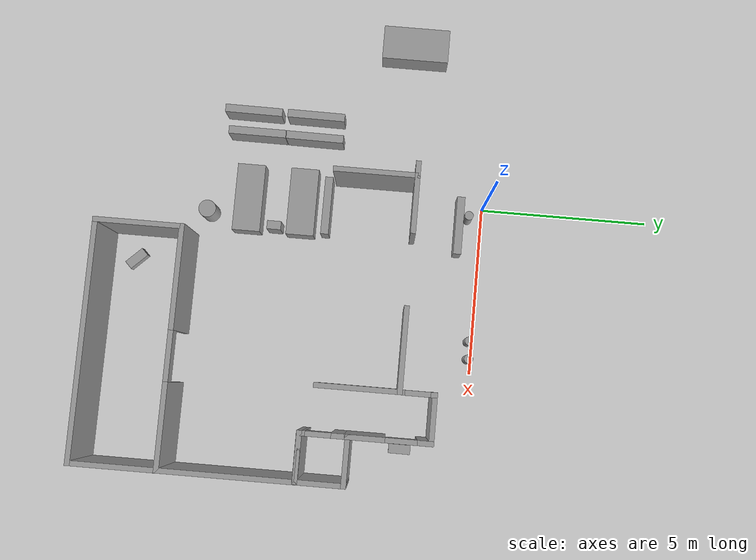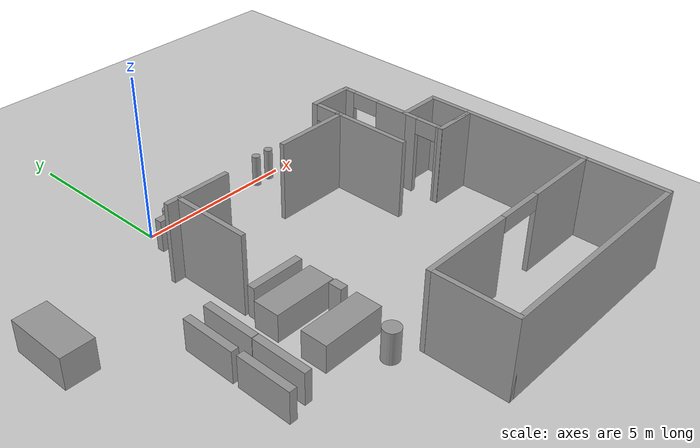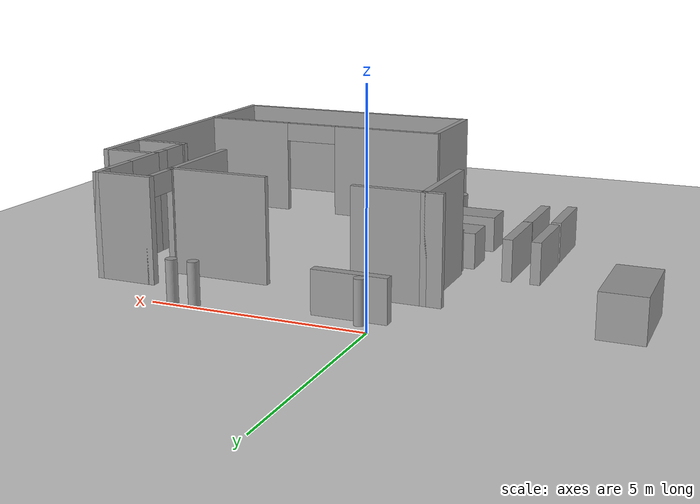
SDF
<sdf version="1.6">
 <world name="default">
  <model name="ground_plane">
   <static>1</static>
   <link name="link">
    <collision name="collision">
     <geometry><plane><normal>0 0 1</normal><size>100 100</size></plane></geometry>
     <surface><friction><ode><mu>100</mu><mu2>50</mu2></ode></friction></surface>
    </collision>
    <visual name="visual">
     <cast_shadows>0</cast_shadows>
     <geometry><plane><normal>0 0 1</normal><size>100 100</size></plane></geometry>
     <material>
      <script><uri>file://media/materials/scripts/gazebo.material</uri><name>Gazebo/Grey</name></script>
     </material>
    </visual>
   </link>
  </model>
  <model name="cma_parede_t">
   <pose>0.159955 -3.24016 0 0 -0 0</pose>
   <link name="Wall_15">
    <collision name="Wall_15_Collision">
     <geometry><box><size>2.5 0.15 2.5</size></box></geometry>
     <pose>0 0 1.25 0 -0 0</pose>
    </collision>
    <visual name="Wall_15_Visual">
     <pose>0 0 1.25 0 -0 0</pose>
     <geometry><box><size>2.5 0.15 2.5</size></box></geometry>
     <material>
      <script><uri>file://media/materials/scripts/gazebo.material</uri><name>Gazebo/Grey</name></script>
      <ambient>1 1 1 1</ambient>
     </material>
    </visual>
    <pose>-0.625 0 0 0 -0 1.5708</pose>
   </link>
   <link name="Wall_16">
    <collision name="Wall_16_Collision">
     <geometry><box><size>0.5 0.15 2.5</size></box></geometry>
     <pose>0 0 1.25 0 -0 0</pose>
    </collision>
    <visual name="Wall_16_Visual">
     <pose>0 0 1.25 0 -0 0</pose>
     <geometry><box><size>0.5 0.15 2.5</size></box></geometry>
     <material>
      <script><uri>file://media/materials/scripts/gazebo.material</uri><name>Gazebo/Grey</name></script>
      <ambient>1 1 1 1</ambient>
     </material>
    </visual>
    <pose>-0.8 1.175 0 0 -0 3.14159</pose>
   </link>
   <link name="Wall_18">
    <collision name="Wall_18_Collision">
     <geometry><box><size>1.75 0.15 2.5</size></box></geometry>
     <pose>0 0 1.25 0 -0 0</pose>
    </collision>
    <visual name="Wall_18_Visual">
     <pose>0 0 1.25 0 -0 0</pose>
     <geometry><box><size>1.75 0.15 2.5</size></box></geometry>
     <material>
      <script><uri>file://media/materials/scripts/gazebo.material</uri><name>Gazebo/Grey</name></script>
      <ambient>1 1 1 1</ambient>
     </material>
    </visual>
    <pose>0.175 1.175 0 0 -0 0</pose>
   </link>
   <static>1</static>
  </model>
  <model name="cma_parede_L">
   <pose>4.97628 -6.69992 0 0 -0 0</pose>
   <link name="Wall_0">
    <pose>0 -1.925 0 0 -0 0</pose>
    <visual name="Wall_0_Visual_0">
     <pose>-1.985 0 1.25 0 -0 0</pose>
     <geometry><box><size>3.03 0.15 2.5</size></box></geometry>
     <material>
      <script><uri>file://media/materials/scripts/gazebo.material</uri><name>Gazebo/Grey</name></script>
      <ambient>1 1 1 1</ambient>
     </material>
    </visual>
    <collision name="Wall_0_Collision_0">
     <geometry><box><size>3.03 0.15 2.5</size></box></geometry>
     <pose>-1.985 0 1.25 0 -0 0</pose>
    </collision>
    <visual name="Wall_0_Visual_1">
     <pose>2.24 0 1.25 0 -0 0</pose>
     <geometry><box><size>2.52 0.15 2.5</size></box></geometry>
     <material>
      <script><uri>file://media/materials/scripts/gazebo.material</uri><name>Gazebo/Grey</name></script>
      <ambient>1 1 1 1</ambient>
     </material>
    </visual>
    <collision name="Wall_0_Collision_1">
     <geometry><box><size>2.52 0.15 2.5</size></box></geometry>
     <pose>2.24 0 1.25 0 -0 0</pose>
    </collision>
    <visual name="Wall_0_Visual_2">
     <pose>0.255 0 2.25 0 -0 0</pose>
     <geometry><box><size>1.45 0.15 0.5</size></box></geometry>
     <material>
      <script><uri>file://media/materials/scripts/gazebo.material</uri><name>Gazebo/Grey</name></script>
      <ambient>1 1 1 1</ambient>
     </material>
    </visual>
    <collision name="Wall_0_Collision_2">
     <geometry><box><size>1.45 0.15 0.5</size></box></geometry>
     <pose>0.255 0 2.25 0 -0 0</pose>
    </collision>
   </link>
   <link name="Wall_1">
    <collision name="Wall_1_Collision">
     <geometry><box><size>4 0.15 2.5</size></box></geometry>
     <pose>0 0 1.25 0 -0 0</pose>
    </collision>
    <visual name="Wall_1_Visual">
     <pose>0 0 1.25 0 -0 0</pose>
     <geometry><box><size>4 0.15 2.5</size></box></geometry>
     <material>
      <script><uri>file://media/materials/scripts/gazebo.material</uri><name>Gazebo/Grey</name></script>
      <ambient>1 1 1 1</ambient>
     </material>
    </visual>
    <pose>3.425 0 0 0 -0 1.5708</pose>
   </link>
   <link name="Wall_2">
    <collision name="Wall_2_Collision">
     <geometry><box><size>1.5 0.15 2.5</size></box></geometry>
     <pose>0 0 1.25 0 -0 0</pose>
    </collision>
    <visual name="Wall_2_Visual">
     <pose>0 0 1.25 0 -0 0</pose>
     <geometry><box><size>1.5 0.15 2.5</size></box></geometry>
     <material>
      <script><uri>file://media/materials/scripts/gazebo.material</uri><name>Gazebo/Grey</name></script>
      <ambient>1 1 1 1</ambient>
     </material>
    </visual>
    <pose>2.75 1.925 0 0 -0 3.14159</pose>
   </link>
   <static>1</static>
  </model>
  <model name="cma_lavabo">
   <pose>7.72297 -4.09302 0 0 -0 0</pose>
   <link name="Wall_4">
    <pose>-0.675 0 0 0 -0 1.5708</pose>
    <visual name="Wall_4_Visual_0">
     <pose>-0.635 0 1.25 0 -0 0</pose>
     <geometry><box><size>0.23 0.15 2.5</size></box></geometry>
     <material>
      <script><uri>file://media/materials/scripts/gazebo.material</uri><name>Gazebo/Grey</name></script>
      <ambient>1 1 1 1</ambient>
     </material>
    </visual>
    <collision name="Wall_4_Collision_0">
     <geometry><box><size>0.23 0.15 2.5</size></box></geometry>
     <pose>-0.635 0 1.25 0 -0 0</pose>
    </collision>
    <visual name="Wall_4_Visual_1">
     <pose>0.48 0 1.25 0 -0 0</pose>
     <geometry><box><size>0.54 0.15 2.5</size></box></geometry>
     <material>
      <script><uri>file://media/materials/scripts/gazebo.material</uri><name>Gazebo/Grey</name></script>
      <ambient>1 1 1 1</ambient>
     </material>
    </visual>
    <collision name="Wall_4_Collision_1">
     <geometry><box><size>0.54 0.15 2.5</size></box></geometry>
     <pose>0.48 0 1.25 0 -0 0</pose>
    </collision>
    <visual name="Wall_4_Visual_2">
     <pose>-0.155 0 2.25 0 -0 0</pose>
     <geometry><box><size>0.73 0.15 0.5</size></box></geometry>
     <material>
      <script><uri>file://media/materials/scripts/gazebo.material</uri><name>Gazebo/Grey</name></script>
      <ambient>1 1 1 1</ambient>
     </material>
    </visual>
    <collision name="Wall_4_Collision_2">
     <geometry><box><size>0.73 0.15 0.5</size></box></geometry>
     <pose>-0.155 0 2.25 0 -0 0</pose>
    </collision>
   </link>
   <link name="Wall_5">
    <collision name="Wall_5_Collision">
     <geometry><box><size>1.5 0.15 2.5</size></box></geometry>
     <pose>0 0 1.25 0 -0 0</pose>
    </collision>
    <visual name="Wall_5_Visual">
     <pose>0 0 1.25 0 -0 0</pose>
     <geometry><box><size>1.5 0.15 2.5</size></box></geometry>
     <material>
      <script><uri>file://media/materials/scripts/gazebo.material</uri><name>Gazebo/Grey</name></script>
      <ambient>1 1 1 1</ambient>
     </material>
    </visual>
    <pose>0 0.675 0 0 -0 0</pose>
   </link>
   <link name="Wall_6">
    <collision name="Wall_6_Collision">
     <geometry><box><size>1.5 0.15 2.5</size></box></geometry>
     <pose>0 0 1.25 0 -0 0</pose>
    </collision>
    <visual name="Wall_6_Visual">
     <pose>0 0 1.25 0 -0 0</pose>
     <geometry><box><size>1.5 0.15 2.5</size></box></geometry>
     <material>
      <script><uri>file://media/materials/scripts/gazebo.material</uri><name>Gazebo/Grey</name></script>
      <ambient>1 1 1 1</ambient>
     </material>
    </visual>
    <pose>0.675 0 0 0 0 -1.5708</pose>
   </link>
   <link name="Wall_7">
    <collision name="Wall_7_Collision">
     <geometry><box><size>1.5 0.15 2.5</size></box></geometry>
     <pose>0 0 1.25 0 -0 0</pose>
    </collision>
    <visual name="Wall_7_Visual">
     <pose>0 0 1.25 0 -0 0</pose>
     <geometry><box><size>1.5 0.15 2.5</size></box></geometry>
     <material>
      <script><uri>file://media/materials/scripts/gazebo.material</uri><name>Gazebo/Grey</name></script>
      <ambient>1 1 1 1</ambient>
     </material>
    </visual>
    <pose>0 -0.675 0 0 -0 3.14159</pose>
   </link>
   <static>1</static>
  </model>
  <model name="cma_L2">
   <pose>4.51683 -3.24587 0 0 -0 0</pose>
   <link name="Wall_10">
    <collision name="Wall_10_Collision">
     <geometry><box><size>2.5 0.15 2.5</size></box></geometry>
     <pose>0 0 1.25 0 -0 0</pose>
    </collision>
    <visual name="Wall_10_Visual">
     <pose>0 0 1.25 0 -0 0</pose>
     <geometry><box><size>2.5 0.15 2.5</size></box></geometry>
     <material>
      <script><uri>file://media/materials/scripts/gazebo.material</uri><name>Gazebo/Grey</name></script>
      <ambient>1 1 1 1</ambient>
     </material>
    </visual>
    <pose>1.175 0 0 0 0 -1.5708</pose>
   </link>
   <link name="Wall_9">
    <collision name="Wall_9_Collision">
     <geometry><box><size>2.5 0.15 2.5</size></box></geometry>
     <pose>0 0 1.25 0 -0 0</pose>
    </collision>
    <visual name="Wall_9_Visual">
     <pose>0 0 1.25 0 -0 0</pose>
     <geometry><box><size>2.5 0.15 2.5</size></box></geometry>
     <material>
      <script><uri>file://media/materials/scripts/gazebo.material</uri><name>Gazebo/Grey</name></script>
      <ambient>1 1 1 1</ambient>
     </material>
    </visual>
    <pose>0 1.175 0 0 -0 0</pose>
   </link>
   <static>1</static>
  </model>
  <model name="cma_L3">
   <pose>6.37221 -2.26022 0 0 -0 0</pose>
   <link name="Wall_12">
    <pose>-0.675 0.75 0 0 -0 1.5708</pose>
    <visual name="Wall_12_Visual_0">
     <pose>-0.46 0 1.25 0 -0 0</pose>
     <geometry><box><size>0.08 0.15 2.5</size></box></geometry>
     <material>
      <script><uri>file://media/materials/scripts/gazebo.material</uri><name>Gazebo/Grey</name></script>
      <ambient>1 1 1 1</ambient>
     </material>
    </visual>
    <collision name="Wall_12_Collision_0">
     <geometry><box><size>0.08 0.15 2.5</size></box></geometry>
     <pose>-0.46 0 1.25 0 -0 0</pose>
    </collision>
    <visual name="Wall_12_Visual_1">
     <pose>0.405 0 1.25 0 -0 0</pose>
     <geometry><box><size>0.19 0.15 2.5</size></box></geometry>
     <material>
      <script><uri>file://media/materials/scripts/gazebo.material</uri><name>Gazebo/Grey</name></script>
      <ambient>1 1 1 1</ambient>
     </material>
    </visual>
    <collision name="Wall_12_Collision_1">
     <geometry><box><size>0.19 0.15 2.5</size></box></geometry>
     <pose>0.405 0 1.25 0 -0 0</pose>
    </collision>
    <visual name="Wall_12_Visual_2">
     <pose>-0.055 0 2.25 0 -0 0</pose>
     <geometry><box><size>0.73 0.15 0.5</size></box></geometry>
     <material>
      <script><uri>file://media/materials/scripts/gazebo.material</uri><name>Gazebo/Grey</name></script>
      <ambient>1 1 1 1</ambient>
     </material>
    </visual>
    <collision name="Wall_12_Collision_2">
     <geometry><box><size>0.73 0.15 0.5</size></box></geometry>
     <pose>-0.055 0 2.25 0 -0 0</pose>
    </collision>
   </link>
   <link name="Wall_13">
    <collision name="Wall_13_Collision">
     <geometry><box><size>1.5 0.15 2.5</size></box></geometry>
     <pose>0 0 1.25 0 -0 0</pose>
    </collision>
    <visual name="Wall_13_Visual">
     <pose>0 0 1.25 0 -0 0</pose>
     <geometry><box><size>1.5 0.15 2.5</size></box></geometry>
     <material>
      <script><uri>file://media/materials/scripts/gazebo.material</uri><name>Gazebo/Grey</name></script>
      <ambient>1 1 1 1</ambient>
     </material>
    </visual>
    <pose>0 1.175 0 0 -0 0</pose>
   </link>
   <link name="Wall_14">
    <pose>0.675 0 0 0 0 -1.5708</pose>
    <visual name="Wall_14_Visual_0">
     <pose>-1.0175 0 1.25 0 -0 0</pose>
     <geometry><box><size>0.465 0.15 2.5</size></box></geometry>
     <material>
      <script><uri>file://media/materials/scripts/gazebo.material</uri><name>Gazebo/Grey</name></script>
      <ambient>1 1 1 1</ambient>
     </material>
    </visual>
    <collision name="Wall_14_Collision_0">
     <geometry><box><size>0.465 0.15 2.5</size></box></geometry>
     <pose>-1.0175 0 1.25 0 -0 0</pose>
    </collision>
    <visual name="Wall_14_Visual_1">
     <pose>0.6825 0 1.25 0 -0 0</pose>
     <geometry><box><size>1.135 0.15 2.5</size></box></geometry>
     <material>
      <script><uri>file://media/materials/scripts/gazebo.material</uri><name>Gazebo/Grey</name></script>
      <ambient>1 1 1 1</ambient>
     </material>
    </visual>
    <collision name="Wall_14_Collision_1">
     <geometry><box><size>1.135 0.15 2.5</size></box></geometry>
     <pose>0.6825 0 1.25 0 -0 0</pose>
    </collision>
    <visual name="Wall_14_Visual_2">
     <pose>-0.335 0 2.25 0 -0 0</pose>
     <geometry><box><size>0.9 0.15 0.5</size></box></geometry>
     <material>
      <script><uri>file://media/materials/scripts/gazebo.material</uri><name>Gazebo/Grey</name></script>
      <ambient>1 1 1 1</ambient>
     </material>
    </visual>
    <collision name="Wall_14_Collision_2">
     <geometry><box><size>0.9 0.15 0.5</size></box></geometry>
     <pose>-0.335 0 2.25 0 -0 0</pose>
    </collision>
   </link>
   <static>1</static>
  </model>
  <model name="cma_U">
   <pose>4.97895 -9.92408 0 0 -0 0</pose>
   <link name="Wall_16">
    <collision name="Wall_16_Collision">
     <geometry><box><size>2.5 0.15 2.5</size></box></geometry>
     <pose>0 0 1.25 0 -0 0</pose>
    </collision>
    <visual name="Wall_16_Visual">
     <pose>0 0 1.25 0 -0 0</pose>
     <geometry><box><size>2.5 0.15 2.5</size></box></geometry>
     <material>
      <script><uri>file://media/materials/scripts/gazebo.material</uri><name>Gazebo/Grey</name></script>
      <ambient>1 1 1 1</ambient>
     </material>
    </visual>
    <pose>-3.425 0 0 0 0 -1.5708</pose>
   </link>
   <link name="Wall_17">
    <collision name="Wall_17_Collision">
     <geometry><box><size>7 0.15 2.5</size></box></geometry>
     <pose>0 0 1.25 0 -0 0</pose>
    </collision>
    <visual name="Wall_17_Visual">
     <pose>0 0 1.25 0 -0 0</pose>
     <geometry><box><size>7 0.15 2.5</size></box></geometry>
     <material>
      <script><uri>file://media/materials/scripts/gazebo.material</uri><name>Gazebo/Grey</name></script>
      <ambient>1 1 1 1</ambient>
     </material>
    </visual>
    <pose>0 -1.175 0 0 -0 0</pose>
   </link>
   <link name="Wall_18">
    <collision name="Wall_18_Collision">
     <geometry><box><size>2.5 0.15 2.5</size></box></geometry>
     <pose>0 0 1.25 0 -0 0</pose>
    </collision>
    <visual name="Wall_18_Visual">
     <pose>0 0 1.25 0 -0 0</pose>
     <geometry><box><size>2.5 0.15 2.5</size></box></geometry>
     <material>
      <script><uri>file://media/materials/scripts/gazebo.material</uri><name>Gazebo/Grey</name></script>
      <ambient>1 1 1 1</ambient>
     </material>
    </visual>
    <pose>3.425 0 0 0 -0 1.5708</pose>
   </link>
   <static>1</static>
  </model>
  <model name="cma_armario">
   <link name="link_0">
    <pose>1.32157 0.885178 0.5 0 -0 0</pose>
    <inertial>
     <mass>0.402376</mass>
     <inertia>
      <ixx>0.0353686</ixx>
      <ixy>0</ixy>
      <ixz>0</ixz>
      <iyy>0.132616</iyy>
      <iyz>0</iyz>
      <izz>0.100922</izz>
     </inertia>
    </inertial>
    <visual name="visual">
     <geometry><box><size>1.71877 0.234069 1</size></box></geometry>
     <material>
      <lighting>1</lighting>
      <script><uri>file://media/materials/scripts/gazebo.material</uri><name>Gazebo/Grey</name></script>
      <ambient>0.3 0.3 0.3 1</ambient>
      <diffuse>0.7 0.7 0.7 1</diffuse>
      <specular>0.01 0.01 0.01 1</specular>
      <emissive>0 0 0 1</emissive>
     </material>
    </visual>
    <collision name="collision">
     <geometry><box><size>1.71877 0.234069 1</size></box></geometry>
     <surface>
      <friction>
       <ode><mu>1</mu><mu2>1</mu2><fdir1>0 0 0</fdir1><slip1>0</slip1><slip2>0</slip2></ode>
       <torsional>
        <coefficient>1</coefficient>
        <patch_radius>0</patch_radius>
        <surface_radius>0</surface_radius>
        <use_patch_radius>1</use_patch_radius>
        <ode><slip>0</slip></ode>
       </torsional>
      </friction>
      <bounce><restitution_coefficient>0</restitution_coefficient><threshold>1e+06</threshold></bounce>
      <contact>
       <collide_without_contact>0</collide_without_contact>
       <collide_without_contact_bitmask>1</collide_without_contact_bitmask>
       <collide_bitmask>1</collide_bitmask>
       <ode>
        <soft_cfm>0</soft_cfm>
        <soft_erp>0.2</soft_erp>
        <kp>1e+13</kp>
        <kd>1</kd>
        <max_vel>0.01</max_vel>
        <min_depth>0</min_depth>
       </ode>
       <bullet>
        <split_impulse>1</split_impulse>
        <split_impulse_penetration_threshold>-0.01</split_impulse_penetration_threshold>
        <soft_cfm>0</soft_cfm>
        <soft_erp>0.2</soft_erp>
        <kp>1e+13</kp>
        <kd>1</kd>
       </bullet>
      </contact>
     </surface>
    </collision>
   </link>
   <static>0</static>
   <pose>-0.67022 -1.58202 0 0 -0 4.4e-05</pose>
  </model>
  <model name="cma_lixo">
   <link name="link_1">
    <pose>0.882962 1.81586 0.5 0 -0 0</pose>
    <inertial>
     <mass>0.0687644</mass>
     <inertia>
      <ixx>0.00602588</ixx>
      <ixy>0</ixy>
      <ixz>0</ixz>
      <iyy>0.00602588</iyy>
      <iyz>0</iyz>
      <izz>0.000591068</izz>
     </inertia>
    </inertial>
    <visual name="visual">
     <geometry><cylinder><radius>0.131112</radius><length>1</length></cylinder></geometry>
     <material>
      <lighting>1</lighting>
      <script><uri>file://media/materials/scripts/gazebo.material</uri><name>Gazebo/Grey</name></script>
      <ambient>0.3 0.3 0.3 1</ambient>
      <diffuse>0.7 0.7 0.7 1</diffuse>
      <specular>0.01 0.01 0.01 1</specular>
      <emissive>0 0 0 1</emissive>
     </material>
    </visual>
    <collision name="collision">
     <geometry><cylinder><radius>0.131112</radius><length>1</length></cylinder></geometry>
     <surface>
      <friction>
       <ode><mu>1</mu><mu2>1</mu2><fdir1>0 0 0</fdir1><slip1>0</slip1><slip2>0</slip2></ode>
       <torsional>
        <coefficient>1</coefficient>
        <patch_radius>0</patch_radius>
        <surface_radius>0</surface_radius>
        <use_patch_radius>1</use_patch_radius>
        <ode><slip>0</slip></ode>
       </torsional>
      </friction>
      <bounce><restitution_coefficient>0</restitution_coefficient><threshold>1e+06</threshold></bounce>
      <contact>
       <collide_without_contact>0</collide_without_contact>
       <collide_without_contact_bitmask>1</collide_without_contact_bitmask>
       <collide_bitmask>1</collide_bitmask>
       <ode>
        <soft_cfm>0</soft_cfm>
        <soft_erp>0.2</soft_erp>
        <kp>1e+13</kp>
        <kd>1</kd>
        <max_vel>0.01</max_vel>
        <min_depth>0</min_depth>
       </ode>
       <bullet>
        <split_impulse>1</split_impulse>
        <split_impulse_penetration_threshold>-0.01</split_impulse_penetration_threshold>
        <soft_cfm>0</soft_cfm>
        <soft_erp>0.2</soft_erp>
        <kp>1e+13</kp>
        <kd>1</kd>
       </bullet>
      </contact>
     </surface>
    </collision>
   </link>
   <static>0</static>
   <pose>-1.35785 -1.52544 -5e-06 0 0 -0.543097</pose>
  </model>
  <model name="cma_sofa2">
   <link name="link_0">
    <pose>-4.668 -2.00601 0.5 0 -0 0</pose>
    <inertial>
     <mass>1.98683</mass>
     <inertia>
      <ixx>0.819149</ixx>
      <ixy>0</ixy>
      <ixz>0</ixz>
      <iyy>0.331138</iyy>
      <iyz>0</iyz>
      <izz>0.819149</izz>
     </inertia>
    </inertial>
    <visual name="visual">
     <geometry><box><size>1 1.98682 1</size></box></geometry>
     <material>
      <lighting>1</lighting>
      <script><uri>file://media/materials/scripts/gazebo.material</uri><name>Gazebo/Grey</name></script>
      <ambient>0.3 0.3 0.3 1</ambient>
      <diffuse>0.7 0.7 0.7 1</diffuse>
      <specular>0.01 0.01 0.01 1</specular>
      <emissive>0 0 0 1</emissive>
     </material>
    </visual>
    <collision name="collision">
     <geometry><box><size>1 1.98682 1</size></box></geometry>
     <surface>
      <friction>
       <ode><mu>1</mu><mu2>1</mu2><fdir1>0 0 0</fdir1><slip1>0</slip1><slip2>0</slip2></ode>
       <torsional>
        <coefficient>1</coefficient>
        <patch_radius>0</patch_radius>
        <surface_radius>0</surface_radius>
        <use_patch_radius>1</use_patch_radius>
        <ode><slip>0</slip></ode>
       </torsional>
      </friction>
      <bounce><restitution_coefficient>0</restitution_coefficient><threshold>1e+06</threshold></bounce>
      <contact>
       <collide_without_contact>0</collide_without_contact>
       <collide_without_contact_bitmask>1</collide_without_contact_bitmask>
       <collide_bitmask>1</collide_bitmask>
       <ode>
        <soft_cfm>0</soft_cfm>
        <soft_erp>0.2</soft_erp>
        <kp>1e+13</kp>
        <kd>1</kd>
        <max_vel>0.01</max_vel>
        <min_depth>0</min_depth>
       </ode>
       <bullet>
        <split_impulse>1</split_impulse>
        <split_impulse_penetration_threshold>-0.01</split_impulse_penetration_threshold>
        <soft_cfm>0</soft_cfm>
        <soft_erp>0.2</soft_erp>
        <kp>1e+13</kp>
        <kd>1</kd>
       </bullet>
      </contact>
     </surface>
    </collision>
   </link>
   <static>0</static>
   <pose>-0.095326 -0.408156 8e-06 3e-06 -1e-06 2e-06</pose>
  </model>
  <model name="cma_armario_2">
   <link name="link_0">
    <pose>1.32157 0.885178 0.5 0 -0 0</pose>
    <inertial>
     <mass>0.402376</mass>
     <inertia>
      <ixx>0.0353686</ixx>
      <ixy>0</ixy>
      <ixz>0</ixz>
      <iyy>0.132616</iyy>
      <iyz>0</iyz>
      <izz>0.100922</izz>
     </inertia>
    </inertial>
    <visual name="visual">
     <geometry><box><size>1.71877 0.234069 1</size></box></geometry>
     <material>
      <lighting>1</lighting>
      <script><uri>file://media/materials/scripts/gazebo.material</uri><name>Gazebo/Grey</name></script>
      <ambient>0.3 0.3 0.3 1</ambient>
      <diffuse>0.7 0.7 0.7 1</diffuse>
      <specular>0.01 0.01 0.01 1</specular>
      <emissive>0 0 0 1</emissive>
     </material>
    </visual>
    <collision name="collision">
     <geometry><box><size>1.71877 0.234069 1</size></box></geometry>
     <surface>
      <friction>
       <ode><mu>1</mu><mu2>1</mu2><fdir1>0 0 0</fdir1><slip1>0</slip1><slip2>0</slip2></ode>
       <torsional>
        <coefficient>1</coefficient>
        <patch_radius>0</patch_radius>
        <surface_radius>0</surface_radius>
        <use_patch_radius>1</use_patch_radius>
        <ode><slip>0</slip></ode>
       </torsional>
      </friction>
      <bounce><restitution_coefficient>0</restitution_coefficient><threshold>1e+06</threshold></bounce>
      <contact>
       <collide_without_contact>0</collide_without_contact>
       <collide_without_contact_bitmask>1</collide_without_contact_bitmask>
       <collide_bitmask>1</collide_bitmask>
       <ode>
        <soft_cfm>0</soft_cfm>
        <soft_erp>0.2</soft_erp>
        <kp>1e+13</kp>
        <kd>1</kd>
        <max_vel>0.01</max_vel>
        <min_depth>0</min_depth>
       </ode>
       <bullet>
        <split_impulse>1</split_impulse>
        <split_impulse_penetration_threshold>-0.01</split_impulse_penetration_threshold>
        <soft_cfm>0</soft_cfm>
        <soft_erp>0.2</soft_erp>
        <kp>1e+13</kp>
        <kd>1</kd>
       </bullet>
      </contact>
     </surface>
    </collision>
   </link>
   <static>0</static>
   <pose>-1.44222 -6.5633 2e-06 -2e-06 -0 1.56274</pose>
  </model>
  <model name="cma_armario_2_clone">
   <link name="link_0">
    <pose>1.32157 0.885178 0.5 0 -0 0</pose>
    <inertial>
     <mass>0.402376</mass>
     <inertia>
      <ixx>0.0353686</ixx>
      <ixy>0</ixy>
      <ixz>0</ixz>
      <iyy>0.132616</iyy>
      <iyz>0</iyz>
      <izz>0.100922</izz>
     </inertia>
    </inertial>
    <visual name="visual">
     <geometry><box><size>1.71877 0.234069 1</size></box></geometry>
     <material>
      <lighting>1</lighting>
      <script><uri>file://media/materials/scripts/gazebo.material</uri><name>Gazebo/Grey</name></script>
      <ambient>0.3 0.3 0.3 1</ambient>
      <diffuse>0.7 0.7 0.7 1</diffuse>
      <specular>0.01 0.01 0.01 1</specular>
      <emissive>0 0 0 1</emissive>
     </material>
    </visual>
    <collision name="collision">
     <geometry><box><size>1.71877 0.234069 1</size></box></geometry>
     <surface>
      <friction>
       <ode><mu>1</mu><mu2>1</mu2><fdir1>0 0 0</fdir1><slip1>0</slip1><slip2>0</slip2></ode>
       <torsional>
        <coefficient>1</coefficient>
        <patch_radius>0</patch_radius>
        <surface_radius>0</surface_radius>
        <use_patch_radius>1</use_patch_radius>
        <ode><slip>0</slip></ode>
       </torsional>
      </friction>
      <bounce><restitution_coefficient>0</restitution_coefficient><threshold>1e+06</threshold></bounce>
      <contact>
       <collide_without_contact>0</collide_without_contact>
       <collide_without_contact_bitmask>1</collide_without_contact_bitmask>
       <collide_bitmask>1</collide_bitmask>
       <ode>
        <soft_cfm>0</soft_cfm>
        <soft_erp>0.2</soft_erp>
        <kp>1e+13</kp>
        <kd>1</kd>
        <max_vel>0.01</max_vel>
        <min_depth>0</min_depth>
       </ode>
       <bullet>
        <split_impulse>1</split_impulse>
        <split_impulse_penetration_threshold>-0.01</split_impulse_penetration_threshold>
        <soft_cfm>0</soft_cfm>
        <soft_erp>0.2</soft_erp>
        <kp>1e+13</kp>
        <kd>1</kd>
       </bullet>
      </contact>
     </surface>
    </collision>
   </link>
   <static>0</static>
   <pose>-1.44876 -8.44621 2e-06 -2e-06 -0 1.56274</pose>
  </model>
  <model name="cma_cama_s">
   <link name="link_0">
    <pose>-0 2e-06 0 0 -0 0</pose>
    <inertial>
     <mass>1.44546</mass>
     <inertia>
      <ixx>0.173816</ixx>
      <ixy>0</ixy>
      <ixz>0</ixz>
      <iyy>0.575223</iyy>
      <iyz>0</iyz>
      <izz>0.56746</izz>
     </inertia>
    </inertial>
    <visual name="visual">
     <geometry><box><size>2.0054 0.830227 0.868163</size></box></geometry>
     <material>
      <lighting>1</lighting>
      <script><uri>file://media/materials/scripts/gazebo.material</uri><name>Gazebo/Grey</name></script>
      <ambient>0.3 0.3 0.3 1</ambient>
      <diffuse>0.7 0.7 0.7 1</diffuse>
      <specular>0.01 0.01 0.01 1</specular>
      <emissive>0 0 0 1</emissive>
     </material>
    </visual>
    <collision name="collision">
     <geometry><box><size>2.0054 0.830227 0.868163</size></box></geometry>
     <surface>
      <friction>
       <ode><mu>1</mu><mu2>1</mu2><fdir1>0 0 0</fdir1><slip1>0</slip1><slip2>0</slip2></ode>
       <torsional>
        <coefficient>1</coefficient>
        <patch_radius>0</patch_radius>
        <surface_radius>0</surface_radius>
        <use_patch_radius>1</use_patch_radius>
        <ode><slip>0</slip></ode>
       </torsional>
      </friction>
      <bounce><restitution_coefficient>0</restitution_coefficient><threshold>1e+06</threshold></bounce>
      <contact>
       <collide_without_contact>0</collide_without_contact>
       <collide_without_contact_bitmask>1</collide_without_contact_bitmask>
       <collide_bitmask>1</collide_bitmask>
       <ode>
        <soft_cfm>0</soft_cfm>
        <soft_erp>0.2</soft_erp>
        <kp>1e+13</kp>
        <kd>1</kd>
        <max_vel>0.01</max_vel>
        <min_depth>0</min_depth>
       </ode>
       <bullet>
        <split_impulse>1</split_impulse>
        <split_impulse_penetration_threshold>-0.01</split_impulse_penetration_threshold>
        <soft_cfm>0</soft_cfm>
        <soft_erp>0.2</soft_erp>
        <kp>1e+13</kp>
        <kd>1</kd>
       </bullet>
      </contact>
     </surface>
    </collision>
   </link>
   <static>0</static>
   <pose>0.313496 -5.42014 0.434082 0 0 -3e-06</pose>
  </model>
  <model name="cma_cama_s_0">
   <link name="link_0">
    <pose>-0 2e-06 0 0 -0 0</pose>
    <inertial>
     <mass>1.44546</mass>
     <inertia>
      <ixx>0.173816</ixx>
      <ixy>0</ixy>
      <ixz>0</ixz>
      <iyy>0.575223</iyy>
      <iyz>0</iyz>
      <izz>0.56746</izz>
     </inertia>
    </inertial>
    <visual name="visual">
     <geometry><box><size>2.0054 0.830227 0.868163</size></box></geometry>
     <material>
      <lighting>1</lighting>
      <script><uri>file://media/materials/scripts/gazebo.material</uri><name>Gazebo/Grey</name></script>
      <ambient>0.3 0.3 0.3 1</ambient>
      <diffuse>0.7 0.7 0.7 1</diffuse>
      <specular>0.01 0.01 0.01 1</specular>
      <emissive>0 0 0 1</emissive>
     </material>
    </visual>
    <collision name="collision">
     <geometry><box><size>2.0054 0.830227 0.868163</size></box></geometry>
     <surface>
      <friction>
       <ode><mu>1</mu><mu2>1</mu2><fdir1>0 0 0</fdir1><slip1>0</slip1><slip2>0</slip2></ode>
       <torsional>
        <coefficient>1</coefficient>
        <patch_radius>0</patch_radius>
        <surface_radius>0</surface_radius>
        <use_patch_radius>1</use_patch_radius>
        <ode><slip>0</slip></ode>
       </torsional>
      </friction>
      <bounce><restitution_coefficient>0</restitution_coefficient><threshold>1e+06</threshold></bounce>
      <contact>
       <collide_without_contact>0</collide_without_contact>
       <collide_without_contact_bitmask>1</collide_without_contact_bitmask>
       <collide_bitmask>1</collide_bitmask>
       <ode>
        <soft_cfm>0</soft_cfm>
        <soft_erp>0.2</soft_erp>
        <kp>1e+13</kp>
        <kd>1</kd>
        <max_vel>0.01</max_vel>
        <min_depth>0</min_depth>
       </ode>
       <bullet>
        <split_impulse>1</split_impulse>
        <split_impulse_penetration_threshold>-0.01</split_impulse_penetration_threshold>
        <soft_cfm>0</soft_cfm>
        <soft_erp>0.2</soft_erp>
        <kp>1e+13</kp>
        <kd>1</kd>
       </bullet>
      </contact>
     </surface>
    </collision>
   </link>
   <static>0</static>
   <pose>0.313302 -7.03078 0.434082 0 0 -1e-06</pose>
  </model>
  <model name="cma_picador">
   <link name="link_2">
    <pose>-0.7258 -1.69104 0 0 -0 0</pose>
    <inertial>
     <mass>0.104732</mass>
     <inertia>
      <ixx>0.00927906</ixx>
      <ixy>0</ixy>
      <ixz>0</ixz>
      <iyy>0.010243</iyy>
      <iyz>0</iyz>
      <izz>0.00206672</izz>
     </inertia>
    </inertial>
    <visual name="visual">
     <geometry><box><size>0.416688 0.25134 1</size></box></geometry>
     <material>
      <lighting>1</lighting>
      <script><uri>file://media/materials/scripts/gazebo.material</uri><name>Gazebo/Grey</name></script>
      <ambient>0.3 0.3 0.3 1</ambient>
      <diffuse>0.7 0.7 0.7 1</diffuse>
      <specular>0.01 0.01 0.01 1</specular>
      <emissive>0 0 0 1</emissive>
     </material>
    </visual>
    <collision name="collision">
     <geometry><box><size>0.416688 0.25134 1</size></box></geometry>
     <surface>
      <friction>
       <ode><mu>1</mu><mu2>1</mu2><fdir1>0 0 0</fdir1><slip1>0</slip1><slip2>0</slip2></ode>
       <torsional>
        <coefficient>1</coefficient>
        <patch_radius>0</patch_radius>
        <surface_radius>0</surface_radius>
        <use_patch_radius>1</use_patch_radius>
        <ode><slip>0</slip></ode>
       </torsional>
      </friction>
      <bounce><restitution_coefficient>0</restitution_coefficient><threshold>1e+06</threshold></bounce>
      <contact>
       <collide_without_contact>0</collide_without_contact>
       <collide_without_contact_bitmask>1</collide_without_contact_bitmask>
       <collide_bitmask>1</collide_bitmask>
       <ode>
        <soft_cfm>0</soft_cfm>
        <soft_erp>0.2</soft_erp>
        <kp>1e+13</kp>
        <kd>1</kd>
        <max_vel>0.01</max_vel>
        <min_depth>0</min_depth>
       </ode>
       <bullet>
        <split_impulse>1</split_impulse>
        <split_impulse_penetration_threshold>-0.01</split_impulse_penetration_threshold>
        <soft_cfm>0</soft_cfm>
        <soft_erp>0.2</soft_erp>
        <kp>1e+13</kp>
        <kd>1</kd>
       </bullet>
      </contact>
     </surface>
    </collision>
   </link>
   <static>0</static>
   <pose>-0.58478 -5.45355 0.499995 -2e-06 2e-06 1.5649</pose>
  </model>
  <model name="cma_armario_3">
   <link name="link_0">
    <pose>1.32157 0.885178 0.5 0 -0 0</pose>
    <inertial>
     <mass>0.402376</mass>
     <inertia>
      <ixx>0.0353686</ixx>
      <ixy>0</ixy>
      <ixz>0</ixz>
      <iyy>0.132616</iyy>
      <iyz>0</iyz>
      <izz>0.100922</izz>
     </inertia>
    </inertial>
    <visual name="visual">
     <geometry><box><size>1.71877 0.234069 1</size></box></geometry>
     <material>
      <lighting>1</lighting>
      <script><uri>file://media/materials/scripts/gazebo.material</uri><name>Gazebo/Grey</name></script>
      <ambient>0.3 0.3 0.3 1</ambient>
      <diffuse>0.7 0.7 0.7 1</diffuse>
      <specular>0.01 0.01 0.01 1</specular>
      <emissive>0 0 0 1</emissive>
     </material>
    </visual>
    <collision name="collision">
     <geometry><box><size>1.71877 0.234069 1</size></box></geometry>
     <surface>
      <friction>
       <ode><mu>1</mu><mu2>1</mu2><fdir1>0 0 0</fdir1><slip1>0</slip1><slip2>0</slip2></ode>
       <torsional>
        <coefficient>1</coefficient>
        <patch_radius>0</patch_radius>
        <surface_radius>0</surface_radius>
        <use_patch_radius>1</use_patch_radius>
        <ode><slip>0</slip></ode>
       </torsional>
      </friction>
      <bounce><restitution_coefficient>0</restitution_coefficient><threshold>1e+06</threshold></bounce>
      <contact>
       <collide_without_contact>0</collide_without_contact>
       <collide_without_contact_bitmask>1</collide_without_contact_bitmask>
       <collide_bitmask>1</collide_bitmask>
       <ode>
        <soft_cfm>0</soft_cfm>
        <soft_erp>0.2</soft_erp>
        <kp>1e+13</kp>
        <kd>1</kd>
        <max_vel>0.01</max_vel>
        <min_depth>0</min_depth>
       </ode>
       <bullet>
        <split_impulse>1</split_impulse>
        <split_impulse_penetration_threshold>-0.01</split_impulse_penetration_threshold>
        <soft_cfm>0</soft_cfm>
        <soft_erp>0.2</soft_erp>
        <kp>1e+13</kp>
        <kd>1</kd>
       </bullet>
      </contact>
     </surface>
    </collision>
   </link>
   <static>0</static>
   <pose>-0.941469 -5.55556 1e-06 -1e-06 1e-06 -0.002188</pose>
  </model>
  <model name="cma_armario_4">
   <link name="link_0">
    <pose>1.32157 0.885178 0.5 0 -0 0</pose>
    <inertial>
     <mass>0.402376</mass>
     <inertia>
      <ixx>0.0353686</ixx>
      <ixy>0</ixy>
      <ixz>0</ixz>
      <iyy>0.132616</iyy>
      <iyz>0</iyz>
      <izz>0.100922</izz>
     </inertia>
    </inertial>
    <visual name="visual">
     <geometry><box><size>1.71877 0.234069 1</size></box></geometry>
     <material>
      <lighting>1</lighting>
      <script><uri>file://media/materials/scripts/gazebo.material</uri><name>Gazebo/Grey</name></script>
      <ambient>0.3 0.3 0.3 1</ambient>
      <diffuse>0.7 0.7 0.7 1</diffuse>
      <specular>0.01 0.01 0.01 1</specular>
      <emissive>0 0 0 1</emissive>
     </material>
    </visual>
    <collision name="collision">
     <geometry><box><size>1.71877 0.234069 1</size></box></geometry>
     <surface>
      <friction>
       <ode><mu>1</mu><mu2>1</mu2><fdir1>0 0 0</fdir1><slip1>0</slip1><slip2>0</slip2></ode>
       <torsional>
        <coefficient>1</coefficient>
        <patch_radius>0</patch_radius>
        <surface_radius>0</surface_radius>
        <use_patch_radius>1</use_patch_radius>
        <ode><slip>0</slip></ode>
       </torsional>
      </friction>
      <bounce><restitution_coefficient>0</restitution_coefficient><threshold>1e+06</threshold></bounce>
      <contact>
       <collide_without_contact>0</collide_without_contact>
       <collide_without_contact_bitmask>1</collide_without_contact_bitmask>
       <collide_bitmask>1</collide_bitmask>
       <ode>
        <soft_cfm>0</soft_cfm>
        <soft_erp>0.2</soft_erp>
        <kp>1e+13</kp>
        <kd>1</kd>
        <max_vel>0.01</max_vel>
        <min_depth>0</min_depth>
       </ode>
       <bullet>
        <split_impulse>1</split_impulse>
        <split_impulse_penetration_threshold>-0.01</split_impulse_penetration_threshold>
        <soft_cfm>0</soft_cfm>
        <soft_erp>0.2</soft_erp>
        <kp>1e+13</kp>
        <kd>1</kd>
       </bullet>
      </contact>
     </surface>
    </collision>
   </link>
   <static>0</static>
   <pose>-0.784826 -6.54711 2e-06 -2e-06 -0 1.56212</pose>
  </model>
  <model name="cma_armario_5">
   <link name="link_0">
    <pose>1.32157 0.885178 0.5 0 -0 0</pose>
    <inertial>
     <mass>0.402376</mass>
     <inertia>
      <ixx>0.0353686</ixx>
      <ixy>0</ixy>
      <ixz>0</ixz>
      <iyy>0.132616</iyy>
      <iyz>0</iyz>
      <izz>0.100922</izz>
     </inertia>
    </inertial>
    <visual name="visual">
     <geometry><box><size>1.71877 0.234069 1</size></box></geometry>
     <material>
      <lighting>1</lighting>
      <script><uri>file://media/materials/scripts/gazebo.material</uri><name>Gazebo/Grey</name></script>
      <ambient>0.3 0.3 0.3 1</ambient>
      <diffuse>0.7 0.7 0.7 1</diffuse>
      <specular>0.01 0.01 0.01 1</specular>
      <emissive>0 0 0 1</emissive>
     </material>
    </visual>
    <collision name="collision">
     <geometry><box><size>1.71877 0.234069 1</size></box></geometry>
     <surface>
      <friction>
       <ode><mu>1</mu><mu2>1</mu2><fdir1>0 0 0</fdir1><slip1>0</slip1><slip2>0</slip2></ode>
       <torsional>
        <coefficient>1</coefficient>
        <patch_radius>0</patch_radius>
        <surface_radius>0</surface_radius>
        <use_patch_radius>1</use_patch_radius>
        <ode><slip>0</slip></ode>
       </torsional>
      </friction>
      <bounce><restitution_coefficient>0</restitution_coefficient><threshold>1e+06</threshold></bounce>
      <contact>
       <collide_without_contact>0</collide_without_contact>
       <collide_without_contact_bitmask>1</collide_without_contact_bitmask>
       <collide_bitmask>1</collide_bitmask>
       <ode>
        <soft_cfm>0</soft_cfm>
        <soft_erp>0.2</soft_erp>
        <kp>1e+13</kp>
        <kd>1</kd>
        <max_vel>0.01</max_vel>
        <min_depth>0</min_depth>
       </ode>
       <bullet>
        <split_impulse>1</split_impulse>
        <split_impulse_penetration_threshold>-0.01</split_impulse_penetration_threshold>
        <soft_cfm>0</soft_cfm>
        <soft_erp>0.2</soft_erp>
        <kp>1e+13</kp>
        <kd>1</kd>
       </bullet>
      </contact>
     </surface>
    </collision>
   </link>
   <static>0</static>
   <pose>-0.793348 -8.27827 2e-06 -2e-06 -0 1.56676</pose>
  </model>
  <model name="cma_cesto_0">
   <link name="link_1">
    <pose>-0.329659 -1.55494 0 0 -0 0</pose>
    <inertial>
     <mass>0.267897</mass>
     <inertia>
      <ixx>0.0268102</ixx>
      <ixy>0</ixy>
      <ixz>0</ixz>
      <iyy>0.0268102</iyy>
      <iyz>0</iyz>
      <izz>0.00897111</izz>
     </inertia>
    </inertial>
    <visual name="visual">
     <geometry><cylinder><radius>0.258792</radius><length>1</length></cylinder></geometry>
     <material>
      <lighting>1</lighting>
      <script><uri>file://media/materials/scripts/gazebo.material</uri><name>Gazebo/Grey</name></script>
      <ambient>0.3 0.3 0.3 1</ambient>
      <diffuse>0.7 0.7 0.7 1</diffuse>
      <specular>0.01 0.01 0.01 1</specular>
      <emissive>0 0 0 1</emissive>
     </material>
    </visual>
    <collision name="collision">
     <geometry><cylinder><radius>0.258792</radius><length>1</length></cylinder></geometry>
     <surface>
      <friction>
       <ode><mu>1</mu><mu2>1</mu2><fdir1>0 0 0</fdir1><slip1>0</slip1><slip2>0</slip2></ode>
       <torsional>
        <coefficient>1</coefficient>
        <patch_radius>0</patch_radius>
        <surface_radius>0</surface_radius>
        <use_patch_radius>1</use_patch_radius>
        <ode><slip>0</slip></ode>
       </torsional>
      </friction>
      <bounce><restitution_coefficient>0</restitution_coefficient><threshold>1e+06</threshold></bounce>
      <contact>
       <collide_without_contact>0</collide_without_contact>
       <collide_without_contact_bitmask>1</collide_without_contact_bitmask>
       <collide_bitmask>1</collide_bitmask>
       <ode>
        <soft_cfm>0</soft_cfm>
        <soft_erp>0.2</soft_erp>
        <kp>1e+13</kp>
        <kd>1</kd>
        <max_vel>0.01</max_vel>
        <min_depth>0</min_depth>
       </ode>
       <bullet>
        <split_impulse>1</split_impulse>
        <split_impulse_penetration_threshold>-0.01</split_impulse_penetration_threshold>
        <soft_cfm>0</soft_cfm>
        <soft_erp>0.2</soft_erp>
        <kp>1e+13</kp>
        <kd>1</kd>
       </bullet>
      </contact>
     </surface>
    </collision>
   </link>
   <static>0</static>
   <pose>1.10203 -6.65937 0.499991 0 -0 0</pose>
  </model>
  <model name="cma_barra_70cmD">
   <link name="link_2">
    <pose>3.79375 1.34046 0.5 0 0 -0.803534</pose>
    <inertial>
     <mass>0.0631368</mass>
     <inertia>
      <ixx>0.00106542</ixx>
      <ixy>0</ixy>
      <ixz>0</ixz>
      <iyy>0.00284727</iyy>
      <iyz>0</iyz>
      <izz>0.0025815</izz>
     </inertia>
    </inertial>
    <visual name="visual">
     <geometry><box><size>0.643938 0.275728 0.355737</size></box></geometry>
     <material>
      <lighting>1</lighting>
      <script><uri>file://media/materials/scripts/gazebo.material</uri><name>Gazebo/Grey</name></script>
      <ambient>0.3 0.3 0.3 1</ambient>
      <diffuse>0.7 0.7 0.7 1</diffuse>
      <specular>0.01 0.01 0.01 1</specular>
      <emissive>0 0 0 1</emissive>
     </material>
    </visual>
    <collision name="collision">
     <geometry><box><size>0.643938 0.275728 0.355737</size></box></geometry>
     <surface>
      <friction>
       <ode><mu>1</mu><mu2>1</mu2><fdir1>0 0 0</fdir1><slip1>0</slip1><slip2>0</slip2></ode>
       <torsional>
        <coefficient>1</coefficient>
        <patch_radius>0</patch_radius>
        <surface_radius>0</surface_radius>
        <use_patch_radius>1</use_patch_radius>
        <ode><slip>0</slip></ode>
       </torsional>
      </friction>
      <bounce><restitution_coefficient>0</restitution_coefficient><threshold>1e+06</threshold></bounce>
      <contact>
       <collide_without_contact>0</collide_without_contact>
       <collide_without_contact_bitmask>1</collide_without_contact_bitmask>
       <collide_bitmask>1</collide_bitmask>
       <ode>
        <soft_cfm>0</soft_cfm>
        <soft_erp>0.2</soft_erp>
        <kp>1e+13</kp>
        <kd>1</kd>
        <max_vel>0.01</max_vel>
        <min_depth>0</min_depth>
       </ode>
       <bullet>
        <split_impulse>1</split_impulse>
        <split_impulse_penetration_threshold>-0.01</split_impulse_penetration_threshold>
        <soft_cfm>0</soft_cfm>
        <soft_erp>0.2</soft_erp>
        <kp>1e+13</kp>
        <kd>1</kd>
       </bullet>
      </contact>
     </surface>
    </collision>
   </link>
   <static>0</static>
   <pose>-1.41318 -11.6476 -0.322083 -5e-06 1.2e-05 0.003979</pose>
  </model>
  <model name="cma_barra_70cmV">
   <link name="link_2">
    <pose>0.076239 -1e-06 0 0 0 -1.5756</pose>
    <inertial>
     <mass>0.0631368</mass>
     <inertia>
      <ixx>0.00106542</ixx>
      <ixy>0</ixy>
      <ixz>0</ixz>
      <iyy>0.00284727</iyy>
      <iyz>0</iyz>
      <izz>0.0025815</izz>
     </inertia>
    </inertial>
    <visual name="visual">
     <geometry><box><size>0.643938 0.275728 0.355737</size></box></geometry>
     <material>
      <lighting>1</lighting>
      <script><uri>file://media/materials/scripts/gazebo.material</uri><name>Gazebo/Grey</name></script>
      <ambient>0.3 0.3 0.3 1</ambient>
      <diffuse>0.7 0.7 0.7 1</diffuse>
      <specular>0.01 0.01 0.01 1</specular>
      <emissive>0 0 0 1</emissive>
     </material>
    </visual>
    <collision name="collision">
     <geometry><box><size>0.643938 0.275728 0.355737</size></box></geometry>
     <surface>
      <friction>
       <ode><mu>1</mu><mu2>1</mu2><fdir1>0 0 0</fdir1><slip1>0</slip1><slip2>0</slip2></ode>
       <torsional>
        <coefficient>1</coefficient>
        <patch_radius>0</patch_radius>
        <surface_radius>0</surface_radius>
        <use_patch_radius>1</use_patch_radius>
        <ode><slip>0</slip></ode>
       </torsional>
      </friction>
      <bounce><restitution_coefficient>0</restitution_coefficient><threshold>1e+06</threshold></bounce>
      <contact>
       <collide_without_contact>0</collide_without_contact>
       <collide_without_contact_bitmask>1</collide_without_contact_bitmask>
       <collide_bitmask>1</collide_bitmask>
       <ode>
        <soft_cfm>0</soft_cfm>
        <soft_erp>0.2</soft_erp>
        <kp>1e+13</kp>
        <kd>1</kd>
        <max_vel>0.01</max_vel>
        <min_depth>0</min_depth>
       </ode>
       <bullet>
        <split_impulse>1</split_impulse>
        <split_impulse_penetration_threshold>-0.01</split_impulse_penetration_threshold>
        <soft_cfm>0</soft_cfm>
        <soft_erp>0.2</soft_erp>
        <kp>1e+13</kp>
        <kd>1</kd>
       </bullet>
      </contact>
     </surface>
    </collision>
   </link>
   <static>0</static>
   <pose>7.29516 -1.92389 0.177863 0 -2.7e-05 -0.002094</pose>
  </model>
  <model name="cma_lixo_4">
   <link name="link_1">
    <pose>0.882962 1.81586 0.5 0 -0 0</pose>
    <inertial>
     <mass>0.0687644</mass>
     <inertia>
      <ixx>0.00602588</ixx>
      <ixy>0</ixy>
      <ixz>0</ixz>
      <iyy>0.00602588</iyy>
      <iyz>0</iyz>
      <izz>0.000591068</izz>
     </inertia>
    </inertial>
    <visual name="visual">
     <geometry><cylinder><radius>0.131112</radius><length>1</length></cylinder></geometry>
     <material>
      <lighting>1</lighting>
      <script><uri>file://media/materials/scripts/gazebo.material</uri><name>Gazebo/Grey</name></script>
      <ambient>0.3 0.3 0.3 1</ambient>
      <diffuse>0.7 0.7 0.7 1</diffuse>
      <specular>0.01 0.01 0.01 1</specular>
      <emissive>0 0 0 1</emissive>
     </material>
    </visual>
    <collision name="collision">
     <geometry><cylinder><radius>0.131112</radius><length>1</length></cylinder></geometry>
     <surface>
      <friction>
       <ode><mu>1</mu><mu2>1</mu2><fdir1>0 0 0</fdir1><slip1>0</slip1><slip2>0</slip2></ode>
       <torsional>
        <coefficient>1</coefficient>
        <patch_radius>0</patch_radius>
        <surface_radius>0</surface_radius>
        <use_patch_radius>1</use_patch_radius>
        <ode><slip>0</slip></ode>
       </torsional>
      </friction>
      <bounce><restitution_coefficient>0</restitution_coefficient><threshold>1e+06</threshold></bounce>
      <contact>
       <collide_without_contact>0</collide_without_contact>
       <collide_without_contact_bitmask>1</collide_without_contact_bitmask>
       <collide_bitmask>1</collide_bitmask>
       <ode>
        <soft_cfm>0</soft_cfm>
        <soft_erp>0.2</soft_erp>
        <kp>1e+13</kp>
        <kd>1</kd>
        <max_vel>0.01</max_vel>
        <min_depth>0</min_depth>
       </ode>
       <bullet>
        <split_impulse>1</split_impulse>
        <split_impulse_penetration_threshold>-0.01</split_impulse_penetration_threshold>
        <soft_cfm>0</soft_cfm>
        <soft_erp>0.2</soft_erp>
        <kp>1e+13</kp>
        <kd>1</kd>
       </bullet>
      </contact>
     </surface>
    </collision>
   </link>
   <static>0</static>
   <pose>3.1651 -1.9552 -1e-06 0 -0 0</pose>
  </model>
  <model name="cma_lixo_5">
   <link name="link_1">
    <pose>0.882962 1.81586 0.5 0 -0 0</pose>
    <inertial>
     <mass>0.0687644</mass>
     <inertia>
      <ixx>0.00602588</ixx>
      <ixy>0</ixy>
      <ixz>0</ixz>
      <iyy>0.00602588</iyy>
      <iyz>0</iyz>
      <izz>0.000591068</izz>
     </inertia>
    </inertial>
    <visual name="visual">
     <geometry><cylinder><radius>0.131112</radius><length>1</length></cylinder></geometry>
     <material>
      <lighting>1</lighting>
      <script><uri>file://media/materials/scripts/gazebo.material</uri><name>Gazebo/Grey</name></script>
      <ambient>0.3 0.3 0.3 1</ambient>
      <diffuse>0.7 0.7 0.7 1</diffuse>
      <specular>0.01 0.01 0.01 1</specular>
      <emissive>0 0 0 1</emissive>
     </material>
    </visual>
    <collision name="collision">
     <geometry><cylinder><radius>0.131112</radius><length>1</length></cylinder></geometry>
     <surface>
      <friction>
       <ode><mu>1</mu><mu2>1</mu2><fdir1>0 0 0</fdir1><slip1>0</slip1><slip2>0</slip2></ode>
       <torsional>
        <coefficient>1</coefficient>
        <patch_radius>0</patch_radius>
        <surface_radius>0</surface_radius>
        <use_patch_radius>1</use_patch_radius>
        <ode><slip>0</slip></ode>
       </torsional>
      </friction>
      <bounce><restitution_coefficient>0</restitution_coefficient><threshold>1e+06</threshold></bounce>
      <contact>
       <collide_without_contact>0</collide_without_contact>
       <collide_without_contact_bitmask>1</collide_without_contact_bitmask>
       <collide_bitmask>1</collide_bitmask>
       <ode>
        <soft_cfm>0</soft_cfm>
        <soft_erp>0.2</soft_erp>
        <kp>1e+13</kp>
        <kd>1</kd>
        <max_vel>0.01</max_vel>
        <min_depth>0</min_depth>
       </ode>
       <bullet>
        <split_impulse>1</split_impulse>
        <split_impulse_penetration_threshold>-0.01</split_impulse_penetration_threshold>
        <soft_cfm>0</soft_cfm>
        <soft_erp>0.2</soft_erp>
        <kp>1e+13</kp>
        <kd>1</kd>
       </bullet>
      </contact>
     </surface>
    </collision>
   </link>
   <static>0</static>
   <pose>3.69005 -1.94018 -1e-06 0 -0 0</pose>
  </model>
 </world>
</sdf>
